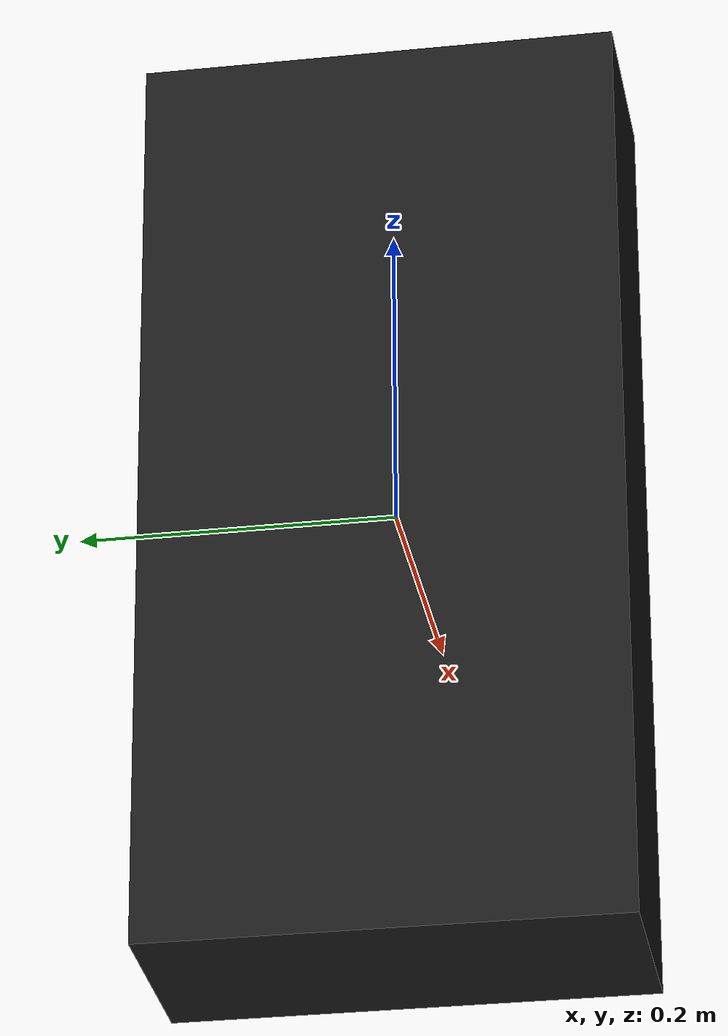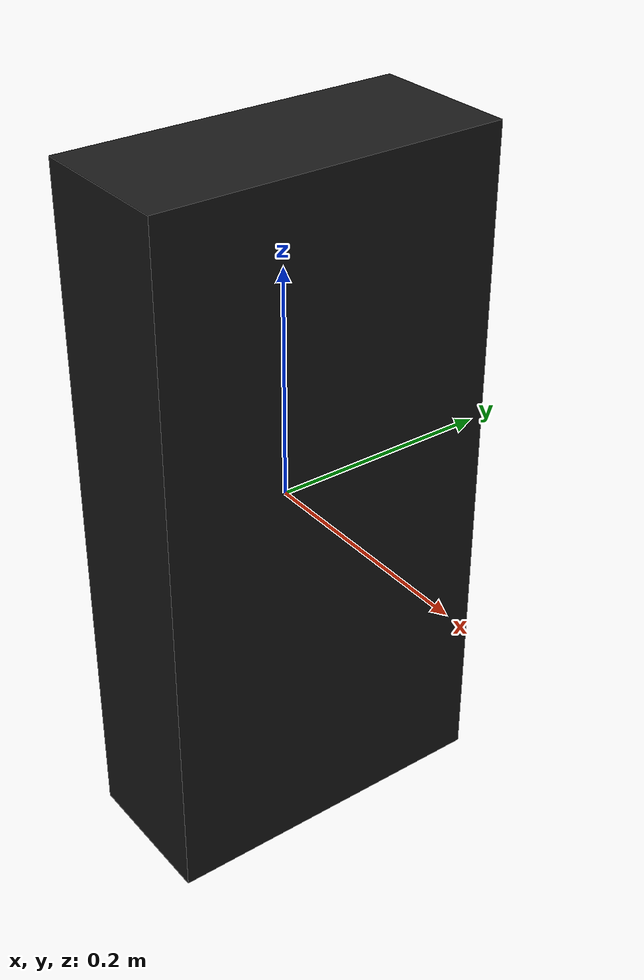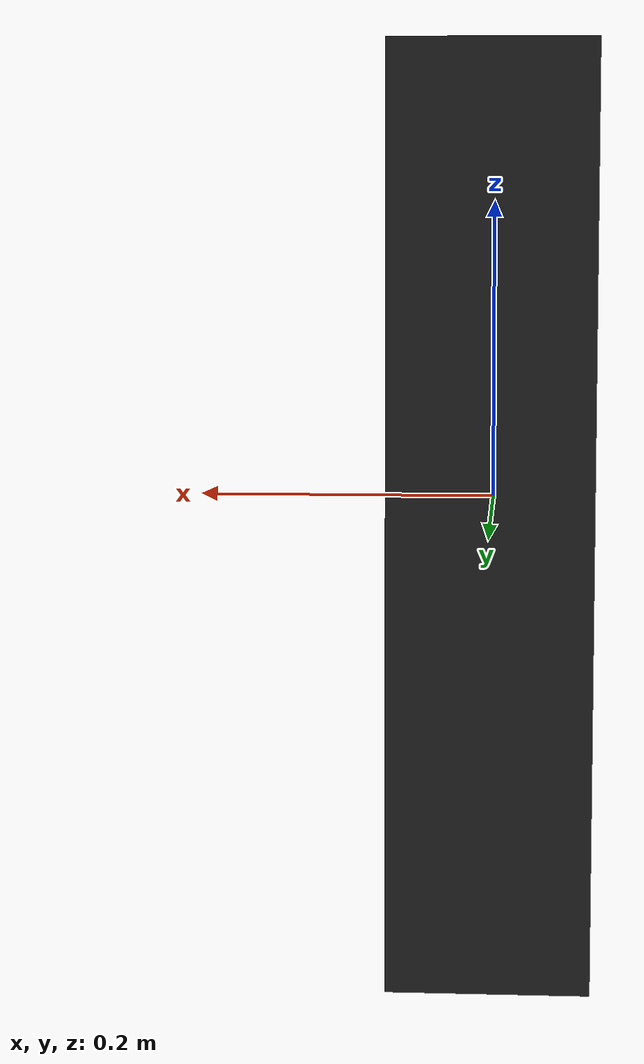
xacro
<?xml version="1.0"?>
<robot xmlns:sensor="http://playerstage.sourceforge.net/gazebo/xmlschema/#sensor"
	 xmlns:controller="http://playerstage.sourceforge.net/gazebo/xmlschema/#controller"
	 xmlns:interface="http://playerstage.sourceforge.net/gazebo/xmlschema/#interface"
     xmlns:xacro="http://ros.org/wiki/xacro"
	 name="human">

  <xacro:property name="M_PI" value="3.14159"/>
  <xacro:property name="M_PI_2" value="1.570795"/>
  <xacro:property name="ARM_MASS" value="1.0"/>

	<xacro:macro name="black">
		<material name="black">
			<color rgba="0.1 0.1 0.1 0.9"/>
		</material>
	</xacro:macro>

	<xacro:macro name="white">
		<material name="white">
			<color rgba="0.8 0.8 0.8 0.9"/>
		</material>
	</xacro:macro>

  <xacro:macro name="default_gazebo" params="name material">
 		<gazebo reference="${name}">
			<material>${material}</material>
			<selfCollide>false</selfCollide>
			<turnGravityOff>false</turnGravityOff>
		  <mu1 value="1.0" />
		  <mu2 value="1.0" />
		  <kp  value="1000000.0" />
		  <kd  value="1000.0" />
		</gazebo>
  </xacro:macro>

  <xacro:macro name="default_inertial" params="mass">
  	<inertial>
	  	<mass value="${mass}" />
		  <inertia ixx="0.001" ixy="0.0" ixz="0.0"
                   iyy="0.001" iyz="0.0"
                   izz="0.001" />
		</inertial>
  </xacro:macro>

	<xacro:macro name="shape_cylinder" params="name l r xyz rpy mass material *rviz_color">
		<link name="${name}">
			<visual>
				<origin xyz="${xyz}" rpy="${rpy}" />
				<geometry>
					<cylinder length="${l}" radius="${r}" />
				</geometry>
			  <xacro:insert_block name="rviz_color" />
      </visual>
      <collision>
				<origin xyz="${xyz}" rpy="${rpy}" />
				<geometry>
					<cylinder length="${l}" radius="${r}" />
				</geometry>
      </collision>
      <xacro:default_inertial mass="${mass}" />
    </link>
    <xacro:default_gazebo name="${name}" material="${material}" />
	</xacro:macro>

	<xacro:macro name="shape_sphere" params="name r xyz rpy mass material *rviz_color">
		<link name="${name}">
			<visual>
				<origin xyz="${xyz}" rpy="${rpy}" />
				<geometry>
					<sphere radius="${r}" />
				</geometry>
			  <xacro:insert_block name="rviz_color" />
      </visual>
      <collision>
				<origin xyz="${xyz}" rpy="${rpy}" />
				<geometry>
					<sphere radius="${r}" />
				</geometry>
      </collision>
      <xacro:default_inertial mass="${mass}" />
    </link>
    <xacro:default_gazebo name="${name}" material="${material}" />
	</xacro:macro>

	<xacro:macro name="shape_box" params="name lwh xyz rpy mass material *rviz_color">
		<link name="${name}">
			<visual>
				<origin xyz="${xyz}" rpy="${rpy}" />
				<geometry>
					<box size="${lwh}" />
				</geometry>
			  <xacro:insert_block name="rviz_color" />
      </visual>
      <collision>
				<origin xyz="${xyz}" rpy="${rpy}" />
					<geometry>
						<box size="${lwh}" />
					</geometry>
      </collision>
      <xacro:default_inertial mass="${mass}" />
    </link>
    <xacro:default_gazebo name="${name}" material="${material}" />
	</xacro:macro>

	  <!--xacro:insert_block name="rviz_color" /-->

  <xacro:shape_box name="base_footprint" lwh="0 0 0" xyz="0 0 0" rpy="0 0 0" mass="0.001" material="Gazebo/FlatBlack">
    <xacro:black />
  </xacro:shape_box>

  <xacro:shape_box name="human_footprint" lwh="0.0 0.0 0.0" xyz="0 0 0" rpy="0 0 0" mass="0.001" material="Gazebo/FlatBlack">
		<xacro:black />
  </xacro:shape_box>

  <xacro:shape_box name="torso_x" lwh="0.0 0.0 0.0" xyz="0 0 0" rpy="0 0 0" mass="0.001" material="Gazebo/FlatBlack">
		<xacro:black />
  </xacro:shape_box>

  <xacro:shape_box name="torso_y" lwh="0.0 0.0 0.0" xyz="0 0 0" rpy="0 0 0" mass="0.001" material="Gazebo/FlatBlack">
		<xacro:black />
  </xacro:shape_box>

  <xacro:shape_box name="torso_z" lwh="0.0 0.0 0.0" xyz="0 0 0" rpy="0 0 0" mass="0.001" material="Gazebo/FlatBlack">
		<xacro:black />
  </xacro:shape_box>

  <joint name="base_footprint_to_human_footprint" type="continuous"><!-- fixed -->
    <parent link="base_footprint"/>
    <child link="human_footprint"/>
    <origin xyz="0 0 0" rpy="${M_PI_2} 0 ${M_PI_2}" />
  </joint>

  <joint name="human_footprint_to_torso_x" type="prismatic">
    <parent link="human_footprint"/>
    <child link="torso_x"/>
    <origin xyz="0 0 0" rpy="0 0 0" />
    <axis xyz="1 0 0" />
  </joint>

  <joint name="torso_x_to_torso_y" type="prismatic">
    <parent link="torso_x"/>
    <child link="torso_y"/>
    <origin xyz="0 0 0" rpy="0 0 0" />
    <axis xyz="0 1 0" />
  </joint>

  <joint name="torso_y_to_torso_z" type="prismatic">
    <parent link="torso_y"/>
    <child link="torso_z"/>
    <origin xyz="0 0 0" rpy="0 0 0" />
    <axis xyz="0 0 1" />
  </joint>

  <xacro:shape_box name="torso_pitch" lwh="0.0 0.0 0.0" xyz="0 0 0" rpy="0 0 0" mass="0.001" material="Gazebo/FlatBlack">
		<xacro:black />
  </xacro:shape_box>

  <xacro:shape_box name="torso_roll" lwh="0.0 0.0 0.0" xyz="0 0 0" rpy="0 0 0" mass="0.001" material="Gazebo/FlatBlack">
		<xacro:black />
  </xacro:shape_box>

  <xacro:shape_box name="torso_yaw" lwh="0.30 0.60 0.13" xyz="0 0 0" rpy="0 0 0" mass="0.001" material="Gazebo/FlatBlack">
		<xacro:black />
  </xacro:shape_box>

  <joint name="torso_z_to_pitch" type="revolute">
    <axis xyz="0 1 0" />
    <limit lower="0.0" upper="0.0" effort="100" velocity="5" />
    <parent link="torso_z"/>
    <origin xyz="0 0 0" rpy="0 0 0" />
    <child link="torso_pitch"/>
  </joint>

  <joint name="torso_pitch_to_roll" type="revolute">
    <axis xyz="1 0 0" />
    <limit lower="0.0" upper="0.0" effort="100" velocity="5" />
    <parent link="torso_pitch"/>
    <origin xyz="0 0 0" rpy="0 0 0" />
    <child link="torso_roll"/>
  </joint>

  <joint name="torso_roll_to_yaw" type="revolute">
    <axis xyz="0 0 1" />
    <limit lower="0.0" upper="0.0" effort="100" velocity="5" />
    <parent link="torso_roll"/>
    <origin xyz="0 0 0" rpy="0 0 0" />
    <child link="torso_yaw"/>
  </joint>
</robot>
